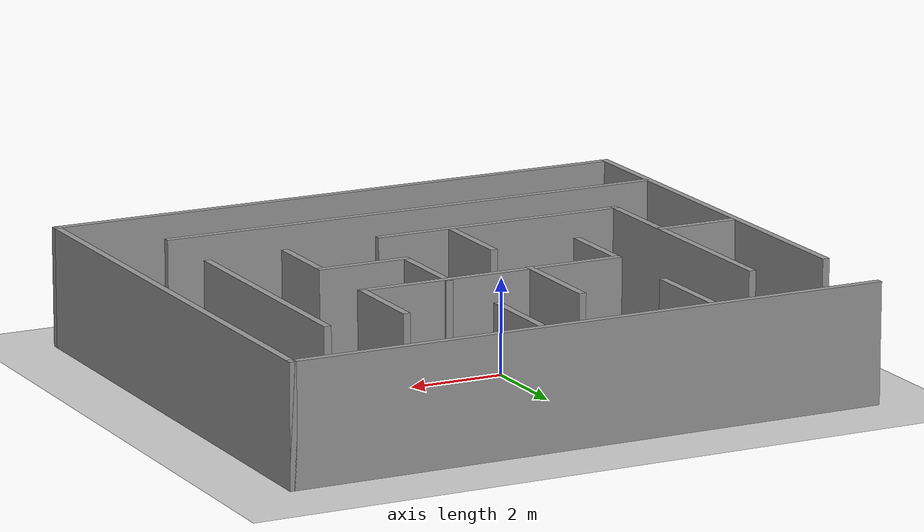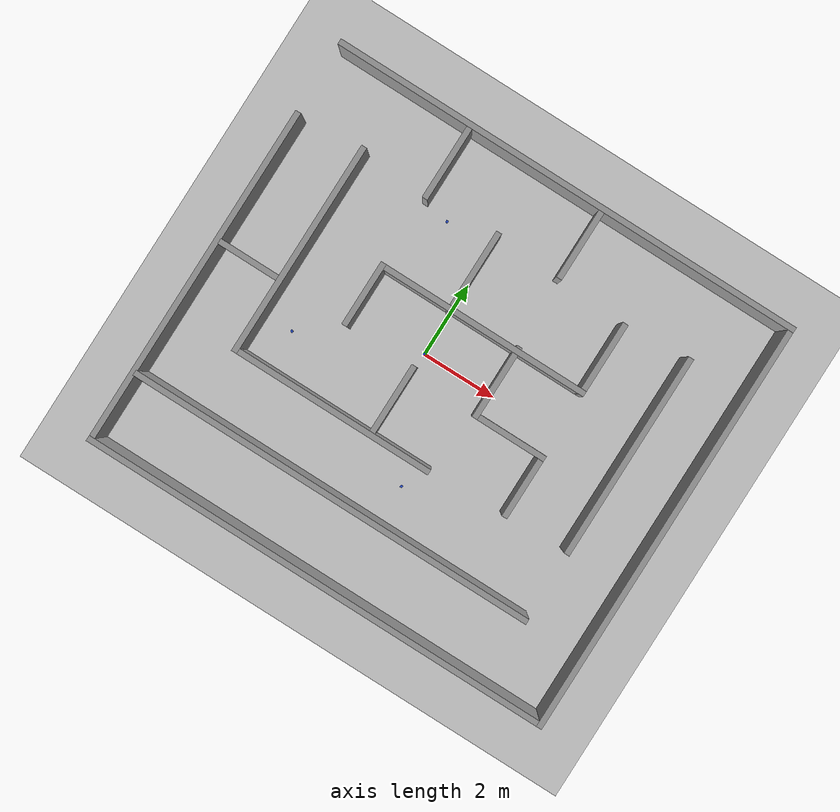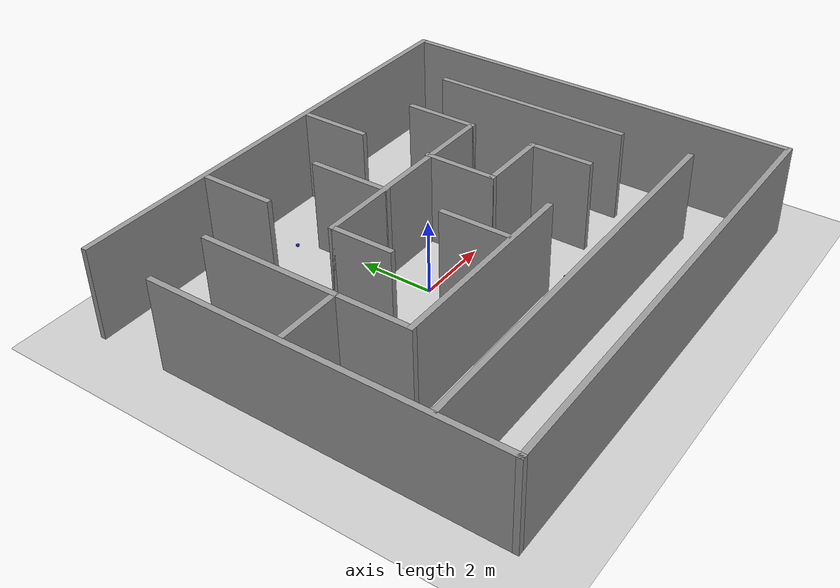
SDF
<sdf version="1.4">
 <world name="my_world">
  <include><uri>model://ground_plane</uri></include>
  <include><uri>model://sun</uri></include>
  <include><uri>model://maze</uri></include>
  <include><uri>model://demo_cube</uri><pose>-1.25 3 0.9 0 0 0</pose></include>
  <include><uri>model://demo_cube</uri><pose>3 1.25 0.9 0 0 0</pose></include>
  <include><uri>model://demo_cube</uri><pose>1.25 -3 0.9 0 0 0</pose></include>
  <include><uri>model://demo_cube</uri><pose>-3 -1.25 0.9 0 0 0</pose></include>
 </world>
</sdf>

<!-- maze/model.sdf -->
<sdf version='1.7'>
  <model name='maze'>
    <pose>0.736927 -0.393909 0 0 -0 0</pose>
    <link name='Wall_1'>
      <collision name='Wall_1_Collision'>
        <geometry>
          <box>
            <size>12.75 0.15 2.5</size>
          </box>
        </geometry>
        <pose>0 0 1.25 0 -0 0</pose>
      </collision>
      <visual name='Wall_1_Visual'>
        <pose>0 0 1.25 0 -0 0</pose>
        <geometry>
          <box>
            <size>12.75 0.15 2.5</size>
          </box>
        </geometry>
        <material>
          <script>
            <uri>file://media/materials/scripts/gazebo.material</uri>
            <name>Gazebo/Grey</name>
          </script>
          <ambient>1 1 1 1</ambient>
        </material>
        <meta>
          <layer>0</layer>
        </meta>
      </visual>
      <pose>0 5.55 0 0 -0 0</pose>
    </link>
    <link name='Wall_10'>
      <collision name='Wall_10_Collision'>
        <geometry>
          <box>
            <size>5.75 0.15 2.5</size>
          </box>
        </geometry>
        <pose>0 0 1.25 0 -0 0</pose>
      </collision>
      <visual name='Wall_10_Visual'>
        <pose>0 0 1.25 0 -0 0</pose>
        <geometry>
          <box>
            <size>5.75 0.15 2.5</size>
          </box>
        </geometry>
        <material>
          <script>
            <uri>file://media/materials/scripts/gazebo.material</uri>
            <name>Gazebo/Grey</name>
          </script>
          <ambient>1 1 1 1</ambient>
        </material>
        <meta>
          <layer>0</layer>
        </meta>
      </visual>
      <pose>-4.54439 0.887986 0 0 -0 -1.5708</pose>
    </link>
    <link name='Wall_11'>
      <collision name='Wall_11_Collision'>
        <geometry>
          <box>
            <size>5.5 0.15 2.5</size>
          </box>
        </geometry>
        <pose>0 0 1.25 0 -0 0</pose>
      </collision>
      <visual name='Wall_11_Visual'>
        <pose>0 0 1.25 0 -0 0</pose>
        <geometry>
          <box>
            <size>5.5 0.15 2.5</size>
          </box>
        </geometry>
        <material>
          <script>
            <uri>file://media/materials/scripts/gazebo.material</uri>
            <name>Gazebo/Grey</name>
          </script>
          <ambient>1 1 1 1</ambient>
        </material>
        <meta>
          <layer>0</layer>
        </meta>
      </visual>
      <pose>-1.86939 -1.91201 0 0 -0 0</pose>
    </link>
    <link name='Wall_13'>
      <collision name='Wall_13_Collision'>
        <geometry>
          <box>
            <size>2 0.15 2.5</size>
          </box>
        </geometry>
        <pose>0 0 1.25 0 -0 0</pose>
      </collision>
      <visual name='Wall_13_Visual'>
        <pose>0 0 1.25 0 -0 0</pose>
        <geometry>
          <box>
            <size>2 0.15 2.5</size>
          </box>
        </geometry>
        <material>
          <script>
            <uri>file://media/materials/scripts/gazebo.material</uri>
            <name>Gazebo/Grey</name>
          </script>
          <ambient>1 1 1 1</ambient>
        </material>
        <meta>
          <layer>0</layer>
        </meta>
      </visual>
      <pose>-0.767159 -0.973055 0 0 -0 1.5708</pose>
    </link>
    <link name='Wall_15'>
      <collision name='Wall_15_Collision'>
        <geometry>
          <box>
            <size>1.75 0.15 2.5</size>
          </box>
        </geometry>
        <pose>0 0 1.25 0 -0 0</pose>
      </collision>
      <visual name='Wall_15_Visual'>
        <pose>0 0 1.25 0 -0 0</pose>
        <geometry>
          <box>
            <size>1.75 0.15 2.5</size>
          </box>
        </geometry>
        <material>
          <script>
            <uri>file://media/materials/scripts/gazebo.material</uri>
            <name>Gazebo/Grey</name>
          </script>
          <ambient>1 1 1 1</ambient>
        </material>
        <meta>
          <layer>0</layer>
        </meta>
      </visual>
      <pose>-2.68237 0.817159 0 0 -0 1.5708</pose>
    </link>
    <link name='Wall_16'>
      <collision name='Wall_16_Collision'>
        <geometry>
          <box>
            <size>5.75 0.15 2.5</size>
          </box>
        </geometry>
        <pose>0 0 1.25 0 -0 0</pose>
      </collision>
      <visual name='Wall_16_Visual'>
        <pose>0 0 1.25 0 -0 0</pose>
        <geometry>
          <box>
            <size>5.75 0.15 2.5</size>
          </box>
        </geometry>
        <material>
          <script>
            <uri>file://media/materials/scripts/gazebo.material</uri>
            <name>Gazebo/Grey</name>
          </script>
          <ambient>1 1 1 1</ambient>
        </material>
        <meta>
          <layer>0</layer>
        </meta>
      </visual>
      <pose>0.117627 1.61716 0 0 -0 0</pose>
    </link>
    <link name='Wall_17'>
      <collision name='Wall_17_Collision'>
        <geometry>
          <box>
            <size>2 0.15 2.5</size>
          </box>
        </geometry>
        <pose>0 0 1.25 0 -0 0</pose>
      </collision>
      <visual name='Wall_17_Visual'>
        <pose>0 0 1.25 0 -0 0</pose>
        <geometry>
          <box>
            <size>2 0.15 2.5</size>
          </box>
        </geometry>
        <material>
          <script>
            <uri>file://media/materials/scripts/gazebo.material</uri>
            <name>Gazebo/Grey</name>
          </script>
          <ambient>1 1 1 1</ambient>
        </material>
        <meta>
          <layer>0</layer>
        </meta>
      </visual>
      <pose>2.91763 2.54216 0 0 -0 1.5708</pose>
    </link>
    <link name='Wall_19'>
      <collision name='Wall_19_Collision'>
        <geometry>
          <box>
            <size>2.25 0.15 2.5</size>
          </box>
        </geometry>
        <pose>0 0 1.25 0 -0 0</pose>
      </collision>
      <visual name='Wall_19_Visual'>
        <pose>0 0 1.25 0 -0 0</pose>
        <geometry>
          <box>
            <size>2.25 0.15 2.5</size>
          </box>
        </geometry>
        <material>
          <script>
            <uri>file://media/materials/scripts/gazebo.material</uri>
            <name>Gazebo/Grey</name>
          </script>
          <ambient>1 1 1 1</ambient>
        </material>
        <meta>
          <layer>0</layer>
        </meta>
      </visual>
      <pose>-0.767159 2.63657 0 0 -0 1.5708</pose>
    </link>
    <link name='Wall_2'>
      <collision name='Wall_2_Collision'>
        <geometry>
          <box>
            <size>11.25 0.15 2.5</size>
          </box>
        </geometry>
        <pose>0 0 1.25 0 -0 0</pose>
      </collision>
      <visual name='Wall_2_Visual'>
        <pose>0 0 1.25 0 -0 0</pose>
        <geometry>
          <box>
            <size>11.25 0.15 2.5</size>
          </box>
        </geometry>
        <material>
          <script>
            <uri>file://media/materials/scripts/gazebo.material</uri>
            <name>Gazebo/Grey</name>
          </script>
          <ambient>1 1 1 1</ambient>
        </material>
        <meta>
          <layer>0</layer>
        </meta>
      </visual>
      <pose>6.3 0 0 0 -0 -1.5708</pose>
    </link>
    <link name='Wall_21'>
      <collision name='Wall_21_Collision'>
        <geometry>
          <box>
            <size>2 0.15 2.5</size>
          </box>
        </geometry>
        <pose>0 0 1.25 0 -0 0</pose>
      </collision>
      <visual name='Wall_21_Visual'>
        <pose>0 0 1.25 0 -0 0</pose>
        <geometry>
          <box>
            <size>2 0.15 2.5</size>
          </box>
        </geometry>
        <material>
          <script>
            <uri>file://media/materials/scripts/gazebo.material</uri>
            <name>Gazebo/Grey</name>
          </script>
          <ambient>1 1 1 1</ambient>
        </material>
        <meta>
          <layer>0</layer>
        </meta>
      </visual>
      <pose>1.09485 0.741371 0 0 -0 -1.5708</pose>
    </link>
    <link name='Wall_22'>
      <collision name='Wall_22_Collision'>
        <geometry>
          <box>
            <size>2 0.15 2.5</size>
          </box>
        </geometry>
        <pose>0 0 1.25 0 -0 0</pose>
      </collision>
      <visual name='Wall_22_Visual'>
        <pose>0 0 1.25 0 -0 0</pose>
        <geometry>
          <box>
            <size>2 0.15 2.5</size>
          </box>
        </geometry>
        <material>
          <script>
            <uri>file://media/materials/scripts/gazebo.material</uri>
            <name>Gazebo/Grey</name>
          </script>
          <ambient>1 1 1 1</ambient>
        </material>
        <meta>
          <layer>0</layer>
        </meta>
      </visual>
      <pose>2.01986 -0.183629 0 0 -0 0</pose>
    </link>
    <link name='Wall_23'>
      <collision name='Wall_23_Collision'>
        <geometry>
          <box>
            <size>1.75 0.15 2.5</size>
          </box>
        </geometry>
        <pose>0 0 1.25 0 -0 0</pose>
      </collision>
      <visual name='Wall_23_Visual'>
        <pose>0 0 1.25 0 -0 0</pose>
        <geometry>
          <box>
            <size>1.75 0.15 2.5</size>
          </box>
        </geometry>
        <material>
          <script>
            <uri>file://media/materials/scripts/gazebo.material</uri>
            <name>Gazebo/Grey</name>
          </script>
          <ambient>1 1 1 1</ambient>
        </material>
        <meta>
          <layer>0</layer>
        </meta>
      </visual>
      <pose>2.94486 -0.983629 0 0 -0 -1.5708</pose>
    </link>
    <link name='Wall_25'>
      <collision name='Wall_25_Collision'>
        <geometry>
          <box>
            <size>11 0.15 2.5</size>
          </box>
        </geometry>
        <pose>0 0 1.25 0 -0 0</pose>
      </collision>
      <visual name='Wall_25_Visual'>
        <pose>0 0 1.25 0 -0 0</pose>
        <geometry>
          <box>
            <size>11 0.15 2.5</size>
          </box>
        </geometry>
        <material>
          <script>
            <uri>file://media/materials/scripts/gazebo.material</uri>
            <name>Gazebo/Grey</name>
          </script>
          <ambient>1 1 1 1</ambient>
        </material>
        <meta>
          <layer>0</layer>
        </meta>
      </visual>
      <pose>-0.768599 -3.65367 0 0 -0 0</pose>
    </link>
    <link name='Wall_27'>
      <collision name='Wall_27_Collision'>
        <geometry>
          <box>
            <size>1.75 0.15 2.5</size>
          </box>
        </geometry>
        <pose>0 0 1.25 0 -0 0</pose>
      </collision>
      <visual name='Wall_27_Visual'>
        <pose>0 0 1.25 0 -0 0</pose>
        <geometry>
          <box>
            <size>1.75 0.15 2.5</size>
          </box>
        </geometry>
        <material>
          <script>
            <uri>file://media/materials/scripts/gazebo.material</uri>
            <name>Gazebo/Grey</name>
          </script>
          <ambient>1 1 1 1</ambient>
        </material>
        <meta>
          <layer>0</layer>
        </meta>
      </visual>
      <pose>-5.367 0.043759 0 0 -0 0</pose>
    </link>
    <link name='Wall_29'>
      <collision name='Wall_29_Collision'>
        <geometry>
          <box>
            <size>5.5 0.15 2.5</size>
          </box>
        </geometry>
        <pose>0 0 1.25 0 -0 0</pose>
      </collision>
      <visual name='Wall_29_Visual'>
        <pose>0 0 1.25 0 -0 0</pose>
        <geometry>
          <box>
            <size>5.5 0.15 2.5</size>
          </box>
        </geometry>
        <material>
          <script>
            <uri>file://media/materials/scripts/gazebo.material</uri>
            <name>Gazebo/Grey</name>
          </script>
          <ambient>1 1 1 1</ambient>
        </material>
        <meta>
          <layer>0</layer>
        </meta>
      </visual>
      <pose>4.65928 0.936546 0 0 -0 1.5708</pose>
    </link>
    <link name='Wall_3'>
      <collision name='Wall_3_Collision'>
        <geometry>
          <box>
            <size>12.75 0.15 2.5</size>
          </box>
        </geometry>
        <pose>0 0 1.25 0 -0 0</pose>
      </collision>
      <visual name='Wall_3_Visual'>
        <pose>0 0 1.25 0 -0 0</pose>
        <geometry>
          <box>
            <size>12.75 0.15 2.5</size>
          </box>
        </geometry>
        <material>
          <script>
            <uri>file://media/materials/scripts/gazebo.material</uri>
            <name>Gazebo/Grey</name>
          </script>
          <ambient>1 1 1 1</ambient>
        </material>
        <meta>
          <layer>0</layer>
        </meta>
      </visual>
      <pose>0 -5.55 0 0 -0 3.14159</pose>
    </link>
    <link name='Wall_4'>
      <collision name='Wall_4_Collision'>
        <geometry>
          <box>
            <size>9.25 0.15 2.5</size>
          </box>
        </geometry>
        <pose>0 0 1.25 0 -0 0</pose>
      </collision>
      <visual name='Wall_4_Visual'>
        <pose>0 0 1.25 0 -0 0</pose>
        <geometry>
          <box>
            <size>9.25 0.15 2.5</size>
          </box>
        </geometry>
        <material>
          <script>
            <uri>file://media/materials/scripts/gazebo.material</uri>
            <name>Gazebo/Grey</name>
          </script>
          <ambient>1 1 1 1</ambient>
        </material>
        <meta>
          <layer>0</layer>
        </meta>
      </visual>
      <pose>-6.3 -1 0 0 -0 1.5708</pose>
    </link>
    <link name='Wall_6'>
      <collision name='Wall_6_Collision'>
        <geometry>
          <box>
            <size>2 0.15 2.5</size>
          </box>
        </geometry>
        <pose>0 0 1.25 0 -0 0</pose>
      </collision>
      <visual name='Wall_6_Visual'>
        <pose>0 0 1.25 0 -0 0</pose>
        <geometry>
          <box>
            <size>2 0.15 2.5</size>
          </box>
        </geometry>
        <material>
          <script>
            <uri>file://media/materials/scripts/gazebo.material</uri>
            <name>Gazebo/Grey</name>
          </script>
          <ambient>1 1 1 1</ambient>
        </material>
        <meta>
          <layer>0</layer>
        </meta>
      </visual>
      <pose>-2.68237 4.492 0 0 -0 -1.5708</pose>
    </link>
    <link name='Wall_8'>
      <collision name='Wall_8_Collision'>
        <geometry>
          <box>
            <size>2 0.15 2.5</size>
          </box>
        </geometry>
        <pose>0 0 1.25 0 -0 0</pose>
      </collision>
      <visual name='Wall_8_Visual'>
        <pose>0 0 1.25 0 -0 0</pose>
        <geometry>
          <box>
            <size>2 0.15 2.5</size>
          </box>
        </geometry>
        <material>
          <script>
            <uri>file://media/materials/scripts/gazebo.material</uri>
            <name>Gazebo/Grey</name>
          </script>
          <ambient>1 1 1 1</ambient>
        </material>
        <meta>
          <layer>0</layer>
        </meta>
      </visual>
      <pose>1.01506 4.5984 0 0 -0 -1.5708</pose>
    </link>
    <static>1</static>
  </model>
</sdf>

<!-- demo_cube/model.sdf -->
<sdf version='1.6'>
  <model name="demo_cube">
      <static>0</static>
      <link name='link'>
        <inertial>
          <mass>0.25</mass>
          <inertia>
            <ixx>0.001</ixx>
            <ixy>0.000000</ixy>
            <ixz>0.000000</ixz>
            <iyy>0.001</iyy>
            <iyz>0.000000</iyz>
            <izz>0.001</izz>
          </inertia>
        </inertial>
        <collision name='collision'>
          <geometry>
            <box>
              <size>0.060 0.060 0.060</size>
            </box>
          </geometry>
          <surface>
            <friction>
              <ode>
                <mu>30.0</mu>
                <mu2>30.0</mu2>
              </ode>
            </friction>
            <contact>
              <ode>
                <kp>1000000.0</kp>
                <kd>100.0</kd>
                <max_vel>1.0</max_vel>
                <min_depth>0.002</min_depth>
              </ode>
            </contact>
          </surface>
        </collision>
        <visual name='visual'>
          <geometry>
            <box>
              <size>0.060 0.060 0.060</size>
            </box>
          </geometry>
          <material>
            <script>
              <uri>file://media/materials/scripts/gazebo.material</uri>
              <name>Gazebo/Blue</name>
            </script>
          </material>
        </visual>
        <velocity_decay>
          <linear>0.000000</linear>
          <angular>0.000000</angular>
        </velocity_decay>
        <self_collide>0</self_collide>
        <kinematic>0</kinematic>
        <gravity>1</gravity>
      </link>
  </model>
</sdf>
